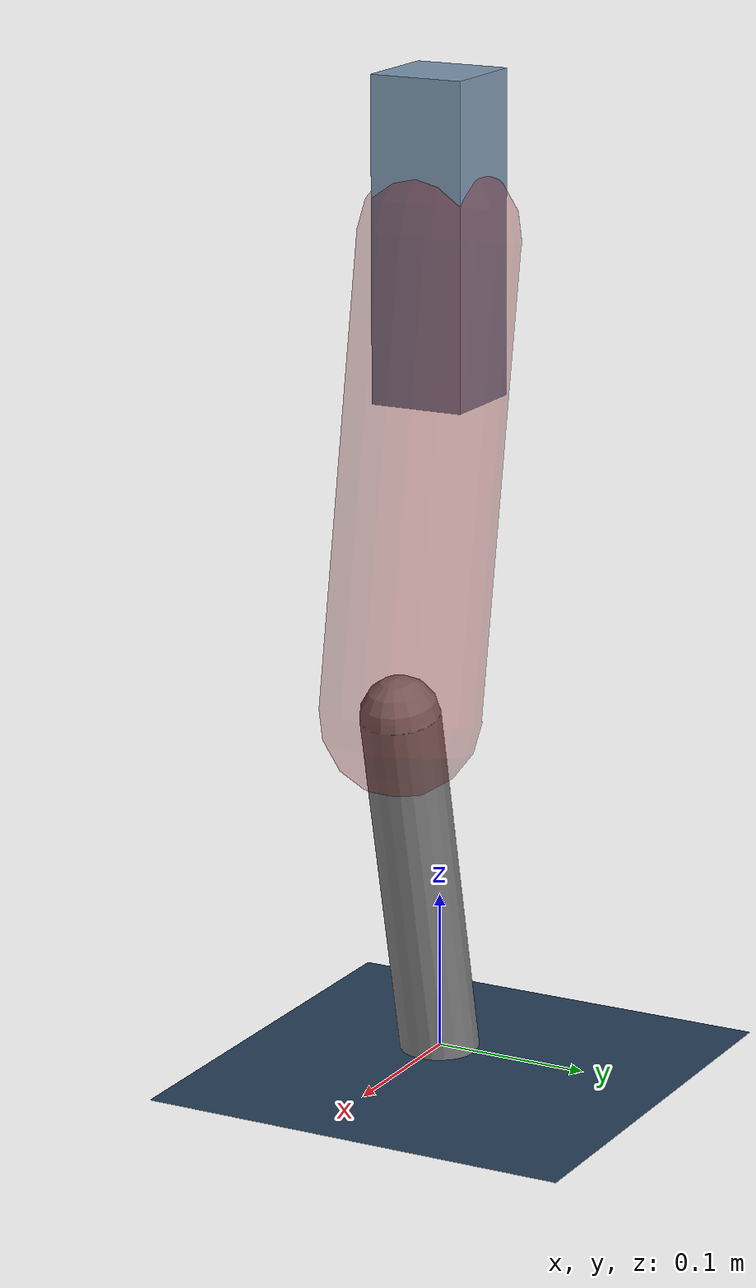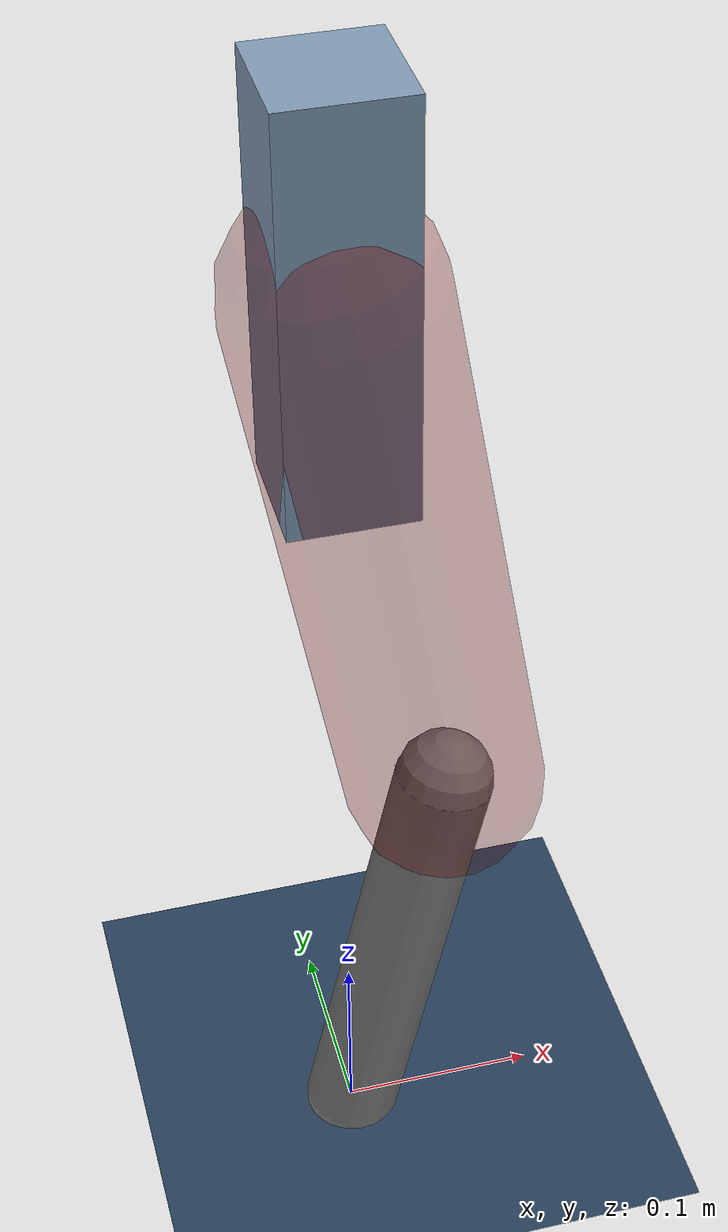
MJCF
<mujoco model="Hopper2D">
	<compiler inertiafromgeom="true" angle="radian" />
	<option timestep="0.001" integrator="implicit" cone="elliptic" solver="Newton" tolerance="1e-10" />

	<default>
		<geom contype="1" conaffinity="1" condim="3" friction="2 0.005 0.0001" solref="0.005 1" />
		<joint limited="true" damping="0.1" />
	</default>

	<asset>
		<texture name="skybox" type="skybox" builtin="gradient" rgb1=".4 .6 .8" rgb2="0 0 0" width="800" height="800" />
		<texture name="grid" type="2d" builtin="checker" rgb1=".1 .2 .3" rgb2=".2 .3 .4" width="300" height="300" mark="edge" markrgb=".2 .3 .4" />
		<material name="ground" texture="grid" texrepeat="1 1" texuniform="true" reflectance="0.1" />
		<material name="leg" rgba="0.5 0.6 0.7 1" />
	</asset>

	<worldbody>

		<geom name="floor" type="plane" size="5 5 0.25" material="ground" />

		<light directional="false" diffuse="0.8 0.8 0.8" specular="0.3 0.3 0.3" pos="0 0 2" dir="0 0 -1" />
		<light mode="targetbodycom" target="base" directional="false" diffuse="0.8 0.8 0.8" specular="0.3 0.3 0.3" pos="0 0 2" dir="0 0 -1" />

		<camera name="fixed" pos="0 -2 1" xyaxes="1 0 0 0 0 1" />
		<camera name="tracking" mode="trackcom" pos="0 -3 1" />

		<body name="root" pos="0 0 0.51684453249992">
			<joint name="slide_x" type="slide" axis="1 0 0" range="-100 100" />
			<joint name="slide_z" type="slide" axis="0 0 1" range="0 10" />

			<body name="base" pos="0 0 0">
				<geom name="torso" type="box" size="0.03 0.03 0.1" mass="3.143" material="leg" />

				<body name="link1" pos="0 0 0" euler="0 1.3952265029110036 0">
					<joint type="hinge" axis="0 -1 0" pos="0 0 0" name="hinge1" limited="true" range="-3.14 3.14" stiffness="0" damping="0.1" />
					<geom name="thigh" type="capsule" fromto="0 0 0 0.290796290666803 0 0" size="0.05" rgba="0.5 0 0 0.3" mass="0.9639499848003682" />

					<body name="link2" pos="0.290796290666803 0 0" euler="0 0.3924472843307825 0">
						<joint type="hinge" axis="0 -1 0" pos="0 0 0" name="hinge2" limited="true" range="-3.14 3.14" stiffness="0" damping="0.1" />
						<geom name="shank" type="capsule" fromto="0 0 0 0.23604824183311707 0 0" size="0.025" mass="0.43103859346649365" />

					</body>
				</body>
			</body>
		</body>
	</worldbody>

	<actuator>
		<motor name="torque1" joint="hinge1" ctrlrange="-128.18171206438362 128.18171206438362" ctrllimited="true" gear="1" />
		<motor name="torque2" joint="hinge2" ctrlrange="-124.44831547958213 124.44831547958213" ctrllimited="true" gear="1" />
	</actuator>
</mujoco>
